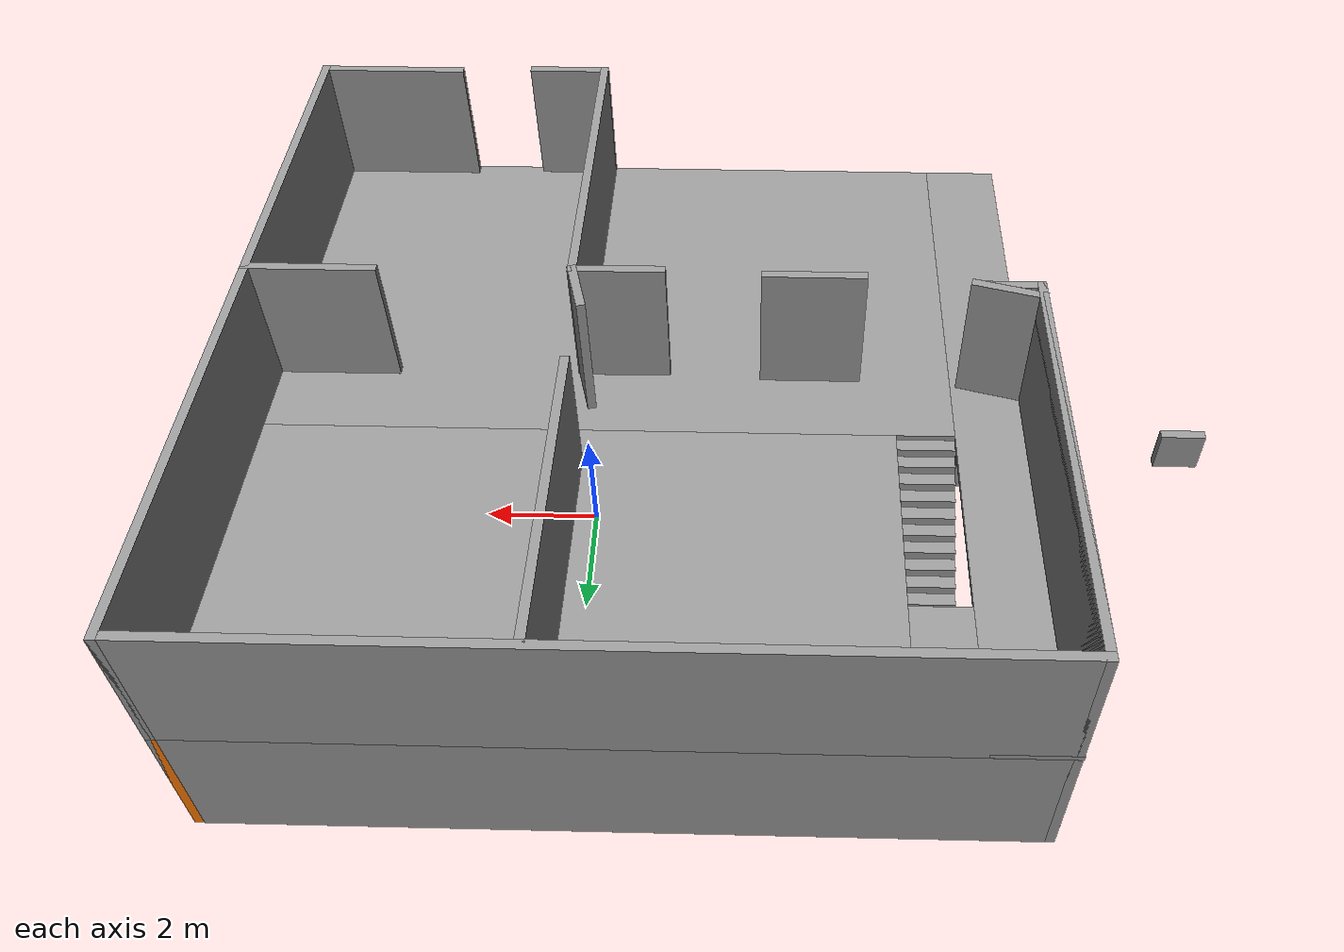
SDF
<?xml version='1.0'?>
<sdf version='1.6'>
  <model name='robothourse'>
    <pose frame=''>-0.9872 -0.461225 0 0 -0 0</pose>
    <link name='Door_0'>
      <collision name='Door_0_Collision'>
        <geometry>
          <box>
            <size>0.9 0.17 2</size>
          </box>
        </geometry>
        <pose frame=''>0 0 1 0 -0 0</pose>
      </collision>
      <visual name='Door_0_Visual'>
        <pose frame=''>0 0 1 0 -0 0</pose>
        <geometry>
          <box>
            <size>0.9 0.17 2</size>
          </box>
        </geometry>
        <material>
          <script>
            <uri>file://media/materials/scripts/gazebo.material</uri>
            <name>Gazebo/Grey</name>
          </script>
        </material>
      </visual>
      <pose frame=''>3.4481 -0.674475 0 0 -0 0</pose>
    </link>
    <link name='Floor_0'>
      <pose frame=''>-0.008428 0 2.5 0 -0 0</pose>
      <visual name='Floor_0_Visual_0'>
        <pose frame=''>-5.96465 0 0.05 0 -0 0</pose>
        <geometry>
          <box>
            <size>1.33756 13.3221 0.1</size>
          </box>
        </geometry>
        <material>
          <script>
            <uri>file://media/materials/scripts/gazebo.material</uri>
            <name>Gazebo/Grey</name>
          </script>
          <ambient>1 1 1 1</ambient>
        </material>
      </visual>
      <collision name='Floor_0_Collision_0'>
        <geometry>
          <box>
            <size>1.33756 13.3221 0.1</size>
          </box>
        </geometry>
        <pose frame=''>-5.96465 0 0.05 0 -0 0</pose>
      </collision>
      <visual name='Floor_0_Visual_1'>
        <pose frame=''>0.668778 -2.99544 0.05 0 -0 0</pose>
        <geometry>
          <box>
            <size>11.9293 7.33122 0.1</size>
          </box>
        </geometry>
        <material>
          <script>
            <uri>file://media/materials/scripts/gazebo.material</uri>
            <name>Gazebo/Grey</name>
          </script>
          <ambient>1 1 1 1</ambient>
        </material>
      </visual>
      <collision name='Floor_0_Collision_1'>
        <geometry>
          <box>
            <size>11.9293 7.33122 0.1</size>
          </box>
        </geometry>
        <pose frame=''>0.668778 -2.99544 0.05 0 -0 0</pose>
      </collision>
      <visual name='Floor_0_Visual_2'>
        <pose frame=''>1.16878 3.66561 0.05 0 -0 0</pose>
        <geometry>
          <box>
            <size>10.9293 5.99087 0.1</size>
          </box>
        </geometry>
        <material>
          <script>
            <uri>file://media/materials/scripts/gazebo.material</uri>
            <name>Gazebo/Grey</name>
          </script>
          <ambient>1 1 1 1</ambient>
        </material>
      </visual>
      <collision name='Floor_0_Collision_2'>
        <geometry>
          <box>
            <size>10.9293 5.99087 0.1</size>
          </box>
        </geometry>
        <pose frame=''>1.16878 3.66561 0.05 0 -0 0</pose>
      </collision>
      <visual name='Floor_0_Visual_3'>
        <pose frame=''>-4.79587 5.41561 0.05 0 -0 0</pose>
        <geometry>
          <box>
            <size>1 2.49087 0.1</size>
          </box>
        </geometry>
        <material>
          <script>
            <uri>file://media/materials/scripts/gazebo.material</uri>
            <name>Gazebo/Grey</name>
          </script>
          <ambient>1 1 1 1</ambient>
        </material>
      </visual>
      <collision name='Floor_0_Collision_3'>
        <geometry>
          <box>
            <size>1 2.49087 0.1</size>
          </box>
        </geometry>
        <pose frame=''>-4.79587 5.41561 0.05 0 -0 0</pose>
      </collision>
    </link>
    <link name='Stairs_0'>
      <visual name='Stairs_0_Visual_0'>
        <pose frame=''>-4.8043 4.05351 0.083333 0 -0 0</pose>
        <geometry>
          <box>
            <size>1 0.233333 0.166667</size>
          </box>
        </geometry>
        <material>
          <script>
            <uri>file://media/materials/scripts/gazebo.material</uri>
            <name>Gazebo/Grey</name>
          </script>
          <ambient>1 1 1 1</ambient>
        </material>
      </visual>
      <collision name='Stairs_0_Collision_0'>
        <geometry>
          <box>
            <size>1 0.233333 0.166667</size>
          </box>
        </geometry>
        <pose frame=''>-4.8043 4.05351 0.083333 0 -0 0</pose>
      </collision>
      <visual name='Stairs_0_Visual_1'>
        <pose frame=''>-4.8043 3.82017 0.25 0 -0 0</pose>
        <geometry>
          <box>
            <size>1 0.233333 0.166667</size>
          </box>
        </geometry>
        <material>
          <script>
            <uri>file://media/materials/scripts/gazebo.material</uri>
            <name>Gazebo/Grey</name>
          </script>
          <ambient>1 1 1 1</ambient>
        </material>
      </visual>
      <collision name='Stairs_0_Collision_1'>
        <geometry>
          <box>
            <size>1 0.233333 0.166667</size>
          </box>
        </geometry>
        <pose frame=''>-4.8043 3.82017 0.25 0 -0 0</pose>
      </collision>
      <visual name='Stairs_0_Visual_2'>
        <pose frame=''>-4.8043 3.58684 0.416667 0 -0 0</pose>
        <geometry>
          <box>
            <size>1 0.233333 0.166667</size>
          </box>
        </geometry>
        <material>
          <script>
            <uri>file://media/materials/scripts/gazebo.material</uri>
            <name>Gazebo/Grey</name>
          </script>
          <ambient>1 1 1 1</ambient>
        </material>
      </visual>
      <collision name='Stairs_0_Collision_2'>
        <geometry>
          <box>
            <size>1 0.233333 0.166667</size>
          </box>
        </geometry>
        <pose frame=''>-4.8043 3.58684 0.416667 0 -0 0</pose>
      </collision>
      <visual name='Stairs_0_Visual_3'>
        <pose frame=''>-4.8043 3.35351 0.583333 0 -0 0</pose>
        <geometry>
          <box>
            <size>1 0.233333 0.166667</size>
          </box>
        </geometry>
        <material>
          <script>
            <uri>file://media/materials/scripts/gazebo.material</uri>
            <name>Gazebo/Grey</name>
          </script>
          <ambient>1 1 1 1</ambient>
        </material>
      </visual>
      <collision name='Stairs_0_Collision_3'>
        <geometry>
          <box>
            <size>1 0.233333 0.166667</size>
          </box>
        </geometry>
        <pose frame=''>-4.8043 3.35351 0.583333 0 -0 0</pose>
      </collision>
      <visual name='Stairs_0_Visual_4'>
        <pose frame=''>-4.8043 3.12018 0.75 0 -0 0</pose>
        <geometry>
          <box>
            <size>1 0.233333 0.166667</size>
          </box>
        </geometry>
        <material>
          <script>
            <uri>file://media/materials/scripts/gazebo.material</uri>
            <name>Gazebo/Grey</name>
          </script>
          <ambient>1 1 1 1</ambient>
        </material>
      </visual>
      <collision name='Stairs_0_Collision_4'>
        <geometry>
          <box>
            <size>1 0.233333 0.166667</size>
          </box>
        </geometry>
        <pose frame=''>-4.8043 3.12018 0.75 0 -0 0</pose>
      </collision>
      <visual name='Stairs_0_Visual_5'>
        <pose frame=''>-4.8043 2.88684 0.916667 0 -0 0</pose>
        <geometry>
          <box>
            <size>1 0.233333 0.166667</size>
          </box>
        </geometry>
        <material>
          <script>
            <uri>file://media/materials/scripts/gazebo.material</uri>
            <name>Gazebo/Grey</name>
          </script>
          <ambient>1 1 1 1</ambient>
        </material>
      </visual>
      <collision name='Stairs_0_Collision_5'>
        <geometry>
          <box>
            <size>1 0.233333 0.166667</size>
          </box>
        </geometry>
        <pose frame=''>-4.8043 2.88684 0.916667 0 -0 0</pose>
      </collision>
      <visual name='Stairs_0_Visual_6'>
        <pose frame=''>-4.8043 2.65351 1.08333 0 -0 0</pose>
        <geometry>
          <box>
            <size>1 0.233333 0.166667</size>
          </box>
        </geometry>
        <material>
          <script>
            <uri>file://media/materials/scripts/gazebo.material</uri>
            <name>Gazebo/Grey</name>
          </script>
          <ambient>1 1 1 1</ambient>
        </material>
      </visual>
      <collision name='Stairs_0_Collision_6'>
        <geometry>
          <box>
            <size>1 0.233333 0.166667</size>
          </box>
        </geometry>
        <pose frame=''>-4.8043 2.65351 1.08333 0 -0 0</pose>
      </collision>
      <visual name='Stairs_0_Visual_7'>
        <pose frame=''>-4.8043 2.42017 1.25 0 -0 0</pose>
        <geometry>
          <box>
            <size>1 0.233333 0.166667</size>
          </box>
        </geometry>
        <material>
          <script>
            <uri>file://media/materials/scripts/gazebo.material</uri>
            <name>Gazebo/Grey</name>
          </script>
          <ambient>1 1 1 1</ambient>
        </material>
      </visual>
      <collision name='Stairs_0_Collision_7'>
        <geometry>
          <box>
            <size>1 0.233333 0.166667</size>
          </box>
        </geometry>
        <pose frame=''>-4.8043 2.42017 1.25 0 -0 0</pose>
      </collision>
      <visual name='Stairs_0_Visual_8'>
        <pose frame=''>-4.8043 2.18684 1.41667 0 -0 0</pose>
        <geometry>
          <box>
            <size>1 0.233333 0.166667</size>
          </box>
        </geometry>
        <material>
          <script>
            <uri>file://media/materials/scripts/gazebo.material</uri>
            <name>Gazebo/Grey</name>
          </script>
          <ambient>1 1 1 1</ambient>
        </material>
      </visual>
      <collision name='Stairs_0_Collision_8'>
        <geometry>
          <box>
            <size>1 0.233333 0.166667</size>
          </box>
        </geometry>
        <pose frame=''>-4.8043 2.18684 1.41667 0 -0 0</pose>
      </collision>
      <visual name='Stairs_0_Visual_9'>
        <pose frame=''>-4.8043 1.95351 1.58333 0 -0 0</pose>
        <geometry>
          <box>
            <size>1 0.233333 0.166667</size>
          </box>
        </geometry>
        <material>
          <script>
            <uri>file://media/materials/scripts/gazebo.material</uri>
            <name>Gazebo/Grey</name>
          </script>
          <ambient>1 1 1 1</ambient>
        </material>
      </visual>
      <collision name='Stairs_0_Collision_9'>
        <geometry>
          <box>
            <size>1 0.233333 0.166667</size>
          </box>
        </geometry>
        <pose frame=''>-4.8043 1.95351 1.58333 0 -0 0</pose>
      </collision>
      <visual name='Stairs_0_Visual_10'>
        <pose frame=''>-4.8043 1.72018 1.75 0 -0 0</pose>
        <geometry>
          <box>
            <size>1 0.233333 0.166667</size>
          </box>
        </geometry>
        <material>
          <script>
            <uri>file://media/materials/scripts/gazebo.material</uri>
            <name>Gazebo/Grey</name>
          </script>
          <ambient>1 1 1 1</ambient>
        </material>
      </visual>
      <collision name='Stairs_0_Collision_10'>
        <geometry>
          <box>
            <size>1 0.233333 0.166667</size>
          </box>
        </geometry>
        <pose frame=''>-4.8043 1.72018 1.75 0 -0 0</pose>
      </collision>
      <visual name='Stairs_0_Visual_11'>
        <pose frame=''>-4.8043 1.48684 1.91667 0 -0 0</pose>
        <geometry>
          <box>
            <size>1 0.233333 0.166667</size>
          </box>
        </geometry>
        <material>
          <script>
            <uri>file://media/materials/scripts/gazebo.material</uri>
            <name>Gazebo/Grey</name>
          </script>
          <ambient>1 1 1 1</ambient>
        </material>
      </visual>
      <collision name='Stairs_0_Collision_11'>
        <geometry>
          <box>
            <size>1 0.233333 0.166667</size>
          </box>
        </geometry>
        <pose frame=''>-4.8043 1.48684 1.91667 0 -0 0</pose>
      </collision>
      <visual name='Stairs_0_Visual_12'>
        <pose frame=''>-4.8043 1.25351 2.08333 0 -0 0</pose>
        <geometry>
          <box>
            <size>1 0.233333 0.166667</size>
          </box>
        </geometry>
        <material>
          <script>
            <uri>file://media/materials/scripts/gazebo.material</uri>
            <name>Gazebo/Grey</name>
          </script>
          <ambient>1 1 1 1</ambient>
        </material>
      </visual>
      <collision name='Stairs_0_Collision_12'>
        <geometry>
          <box>
            <size>1 0.233333 0.166667</size>
          </box>
        </geometry>
        <pose frame=''>-4.8043 1.25351 2.08333 0 -0 0</pose>
      </collision>
      <visual name='Stairs_0_Visual_13'>
        <pose frame=''>-4.8043 1.02018 2.25 0 -0 0</pose>
        <geometry>
          <box>
            <size>1 0.233333 0.166667</size>
          </box>
        </geometry>
        <material>
          <script>
            <uri>file://media/materials/scripts/gazebo.material</uri>
            <name>Gazebo/Grey</name>
          </script>
          <ambient>1 1 1 1</ambient>
        </material>
      </visual>
      <collision name='Stairs_0_Collision_13'>
        <geometry>
          <box>
            <size>1 0.233333 0.166667</size>
          </box>
        </geometry>
        <pose frame=''>-4.8043 1.02018 2.25 0 -0 0</pose>
      </collision>
      <visual name='Stairs_0_Visual_14'>
        <pose frame=''>-4.8043 0.786842 2.41667 0 -0 0</pose>
        <geometry>
          <box>
            <size>1 0.233333 0.166667</size>
          </box>
        </geometry>
        <material>
          <script>
            <uri>file://media/materials/scripts/gazebo.material</uri>
            <name>Gazebo/Grey</name>
          </script>
          <ambient>1 1 1 1</ambient>
        </material>
      </visual>
      <collision name='Stairs_0_Collision_14'>
        <geometry>
          <box>
            <size>1 0.233333 0.166667</size>
          </box>
        </geometry>
        <pose frame=''>-4.8043 0.786842 2.41667 0 -0 0</pose>
      </collision>
    </link>
    <link name='Wall_10'>
      <collision name='Wall_10_Collision'>
        <geometry>
          <box>
            <size>6 0.15 2.5</size>
          </box>
        </geometry>
        <pose frame=''>0 0 1.25 0 -0 0</pose>
      </collision>
      <visual name='Wall_10_Visual'>
        <pose frame=''>0 0 1.25 0 -0 0</pose>
        <geometry>
          <box>
            <size>6 0.15 2.5</size>
          </box>
        </geometry>
        <material>
          <script>
            <uri>file://media/materials/scripts/gazebo.material</uri>
            <name>Gazebo/Grey</name>
          </script>
          <ambient>1 1 1 1</ambient>
        </material>
      </visual>
      <pose frame=''>1.1459 -3.66105 0 0 -0 1.5708</pose>
    </link>
    <link name='Wall_11'>
      <collision name='Wall_11_Collision'>
        <geometry>
          <box>
            <size>1 0.15 2.5</size>
          </box>
        </geometry>
        <pose frame=''>0 0 1.25 0 -0 0</pose>
      </collision>
      <visual name='Wall_11_Visual'>
        <pose frame=''>0 0 1.25 0 -0 0</pose>
        <geometry>
          <box>
            <size>1 0.15 2.5</size>
          </box>
        </geometry>
        <material>
          <script>
            <uri>file://media/materials/scripts/gazebo.material</uri>
            <name>Gazebo/Grey</name>
          </script>
          <ambient>1 1 1 1</ambient>
        </material>
      </visual>
      <pose frame=''>1.0359 -0.325532 0 0 -0 1.8326</pose>
    </link>
    <link name='Wall_13'>
      <collision name='Wall_13_Collision'>
        <geometry>
          <box>
            <size>5.25 0.15 2.5</size>
          </box>
        </geometry>
        <pose frame=''>0 0 1.25 0 -0 0</pose>
      </collision>
      <visual name='Wall_13_Visual'>
        <pose frame=''>0 0 1.25 0 -0 0</pose>
        <geometry>
          <box>
            <size>5.25 0.15 2.5</size>
          </box>
        </geometry>
        <material>
          <script>
            <uri>file://media/materials/scripts/gazebo.material</uri>
            <name>Gazebo/Grey</name>
          </script>
          <ambient>1 1 1 1</ambient>
        </material>
      </visual>
      <pose frame=''>1.02792 3.93863 0 0 -0 1.5708</pose>
    </link>
    <link name='Wall_15'>
      <collision name='Wall_15_Collision'>
        <geometry>
          <box>
            <size>7.25 0.15 2.5</size>
          </box>
        </geometry>
        <pose frame=''>0 0 1.25 0 -0 0</pose>
      </collision>
      <visual name='Wall_15_Visual'>
        <pose frame=''>0 0 1.25 0 -0 0</pose>
        <geometry>
          <box>
            <size>7.25 0.15 2.5</size>
          </box>
        </geometry>
        <material>
          <script>
            <uri>file://media/materials/scripts/gazebo.material</uri>
            <name>Gazebo/Grey</name>
          </script>
          <ambient>1 1 1 1</ambient>
        </material>
      </visual>
      <pose frame=''>-6.55 3.03605 0 0 0 -1.5708</pose>
    </link>
    <link name='Wall_16'>
      <collision name='Wall_16_Collision'>
        <geometry>
          <box>
            <size>1 0.15 2.5</size>
          </box>
        </geometry>
        <pose frame=''>0 0 1.25 0 -0 0</pose>
      </collision>
      <visual name='Wall_16_Visual'>
        <pose frame=''>0 0 1.25 0 -0 0</pose>
        <geometry>
          <box>
            <size>1 0.15 2.5</size>
          </box>
        </geometry>
        <material>
          <script>
            <uri>file://media/materials/scripts/gazebo.material</uri>
            <name>Gazebo/Grey</name>
          </script>
          <ambient>1 1 1 1</ambient>
        </material>
      </visual>
      <pose frame=''>-6.125 -0.51395 0 0 -0 0</pose>
    </link>
    <link name='Wall_18'>
      <collision name='Wall_18_Collision'>
        <geometry>
          <box>
            <size>1.75 0.15 2.5</size>
          </box>
        </geometry>
        <pose frame=''>0 0 1.25 0 -0 0</pose>
      </collision>
      <visual name='Wall_18_Visual'>
        <pose frame=''>0 0 1.25 0 -0 0</pose>
        <geometry>
          <box>
            <size>1.75 0.15 2.5</size>
          </box>
        </geometry>
        <material>
          <script>
            <uri>file://media/materials/scripts/gazebo.material</uri>
            <name>Gazebo/Grey</name>
          </script>
          <ambient>1 1 1 1</ambient>
        </material>
      </visual>
      <pose frame=''>-2.85372 -0.674475 0 0 -0 0</pose>
    </link>
    <link name='Wall_2'>
      <collision name='Wall_2_Collision'>
        <geometry>
          <box>
            <size>13.25 0.15 2.5</size>
          </box>
        </geometry>
        <pose frame=''>0 0 1.25 0 -0 0</pose>
      </collision>
      <visual name='Wall_2_Visual'>
        <pose frame=''>0 0 1.25 0 -0 0</pose>
        <geometry>
          <box>
            <size>13.25 0.15 2.5</size>
          </box>
        </geometry>
        <material>
          <script>
            <uri>file://media/materials/scripts/gazebo.material</uri>
            <name>Gazebo/Grey</name>
          </script>
          <ambient>1 1 1 1</ambient>
        </material>
      </visual>
      <pose frame=''>0 6.58605 0 0 -0 0</pose>
    </link>
    <link name='Wall_20'>
      <collision name='Wall_20_Collision'>
        <geometry>
          <box>
            <size>1.61703 0.15 2.5</size>
          </box>
        </geometry>
        <pose frame=''>0 0 1.25 0 -0 0</pose>
      </collision>
      <visual name='Wall_20_Visual'>
        <pose frame=''>0 0 1.25 0 -0 0</pose>
        <geometry>
          <box>
            <size>1.61703 0.15 2.5</size>
          </box>
        </geometry>
        <material>
          <script>
            <uri>file://media/materials/scripts/gazebo.material</uri>
            <name>Gazebo/Grey</name>
          </script>
          <ambient>1 1 1 1</ambient>
        </material>
      </visual>
      <pose frame=''>0.412437 -0.744938 0 0 -0 0.012117</pose>
    </link>
    <link name='Wall_22'>
      <collision name='Wall_22_Collision'>
        <geometry>
          <box>
            <size>13.25 0.15 2.5</size>
          </box>
        </geometry>
        <pose frame=''>0 0 1.25 0 -0 0</pose>
      </collision>
      <visual name='Wall_22_Visual'>
        <pose frame=''>0 0 1.25 0 -0 0</pose>
        <geometry>
          <box>
            <size>13.25 0.15 2.5</size>
          </box>
        </geometry>
        <material>
          <script>
            <uri>file://media/materials/scripts/gazebo.material</uri>
            <name>Gazebo/Grey</name>
          </script>
          <ambient>1 1 1 1</ambient>
        </material>
      </visual>
      <pose frame=''>0 6.58605 2.5 0 -0 0</pose>
    </link>
    <link name='Wall_23'>
      <collision name='Wall_23_Collision'>
        <geometry>
          <box>
            <size>13.25 0.15 2.5</size>
          </box>
        </geometry>
        <pose frame=''>0 0 1.25 0 -0 0</pose>
      </collision>
      <visual name='Wall_23_Visual'>
        <pose frame=''>0 0 1.25 0 -0 0</pose>
        <geometry>
          <box>
            <size>13.25 0.15 2.5</size>
          </box>
        </geometry>
        <material>
          <script>
            <uri>file://media/materials/scripts/gazebo.material</uri>
            <name>Gazebo/Grey</name>
          </script>
          <ambient>1 1 1 1</ambient>
        </material>
      </visual>
      <pose frame=''>6.55 0.03605 2.5 0 0 -1.5708</pose>
    </link>
    <link name='Wall_24'>
      <collision name='Wall_24_Collision'>
        <geometry>
          <box>
            <size>2.75 0.15 2.5</size>
          </box>
        </geometry>
        <pose frame=''>0 0 1.25 0 -0 0</pose>
      </collision>
      <visual name='Wall_24_Visual'>
        <pose frame=''>0 0 1.25 0 -0 0</pose>
        <geometry>
          <box>
            <size>2.75 0.15 2.5</size>
          </box>
        </geometry>
        <material>
          <script>
            <uri>file://media/materials/scripts/gazebo.material</uri>
            <name>Gazebo/Grey</name>
          </script>
          <ambient>1 1 1 1</ambient>
        </material>
      </visual>
      <pose frame=''>5.25 -6.51395 2.5 0 -0 3.14159</pose>
    </link>
    <link name='Wall_25'>
      <collision name='Wall_25_Collision'>
        <geometry>
          <box>
            <size>2.25 0.15 2.5</size>
          </box>
        </geometry>
        <pose frame=''>0 0 1.25 0 -0 0</pose>
      </collision>
      <visual name='Wall_25_Visual'>
        <pose frame=''>0 0 1.25 0 -0 0</pose>
        <geometry>
          <box>
            <size>2.25 0.15 2.5</size>
          </box>
        </geometry>
        <material>
          <script>
            <uri>file://media/materials/scripts/gazebo.material</uri>
            <name>Gazebo/Grey</name>
          </script>
          <ambient>1 1 1 1</ambient>
        </material>
      </visual>
      <pose frame=''>5.49275 -0.674475 2.5 0 -0 3.14159</pose>
    </link>
    <link name='Wall_26'>
      <collision name='Wall_26_Collision'>
        <geometry>
          <box>
            <size>1.5 0.15 2.5</size>
          </box>
        </geometry>
        <pose frame=''>0 0 1.25 0 -0 0</pose>
      </collision>
      <visual name='Wall_26_Visual'>
        <pose frame=''>0 0 1.25 0 -0 0</pose>
        <geometry>
          <box>
            <size>1.5 0.15 2.5</size>
          </box>
        </geometry>
        <material>
          <script>
            <uri>file://media/materials/scripts/gazebo.material</uri>
            <name>Gazebo/Grey</name>
          </script>
          <ambient>1 1 1 1</ambient>
        </material>
      </visual>
      <pose frame=''>1.8209 -6.58605 2.5 0 -0 3.14159</pose>
    </link>
    <link name='Wall_27'>
      <collision name='Wall_27_Collision'>
        <geometry>
          <box>
            <size>6 0.15 2.5</size>
          </box>
        </geometry>
        <pose frame=''>0 0 1.25 0 -0 0</pose>
      </collision>
      <visual name='Wall_27_Visual'>
        <pose frame=''>0 0 1.25 0 -0 0</pose>
        <geometry>
          <box>
            <size>6 0.15 2.5</size>
          </box>
        </geometry>
        <material>
          <script>
            <uri>file://media/materials/scripts/gazebo.material</uri>
            <name>Gazebo/Grey</name>
          </script>
          <ambient>1 1 1 1</ambient>
        </material>
      </visual>
      <pose frame=''>1.1459 -3.66105 2.5 0 -0 1.5708</pose>
    </link>
    <link name='Wall_28'>
      <collision name='Wall_28_Collision'>
        <geometry>
          <box>
            <size>1 0.15 2.5</size>
          </box>
        </geometry>
        <pose frame=''>0 0 1.25 0 -0 0</pose>
      </collision>
      <visual name='Wall_28_Visual'>
        <pose frame=''>0 0 1.25 0 -0 0</pose>
        <geometry>
          <box>
            <size>1 0.15 2.5</size>
          </box>
        </geometry>
        <material>
          <script>
            <uri>file://media/materials/scripts/gazebo.material</uri>
            <name>Gazebo/Grey</name>
          </script>
          <ambient>1 1 1 1</ambient>
        </material>
      </visual>
      <pose frame=''>1.0359 -0.325532 2.5 0 -0 1.8326</pose>
    </link>
    <link name='Wall_29'>
      <collision name='Wall_29_Collision'>
        <geometry>
          <box>
            <size>5.25 0.15 2.5</size>
          </box>
        </geometry>
        <pose frame=''>0 0 1.25 0 -0 0</pose>
      </collision>
      <visual name='Wall_29_Visual'>
        <pose frame=''>0 0 1.25 0 -0 0</pose>
        <geometry>
          <box>
            <size>5.25 0.15 2.5</size>
          </box>
        </geometry>
        <material>
          <script>
            <uri>file://media/materials/scripts/gazebo.material</uri>
            <name>Gazebo/Grey</name>
          </script>
          <ambient>1 1 1 1</ambient>
        </material>
      </visual>
      <pose frame=''>1.02792 3.93863 2.5 0 -0 1.5708</pose>
    </link>
    <link name='Wall_3'>
      <collision name='Wall_3_Collision'>
        <geometry>
          <box>
            <size>13.25 0.15 2.5</size>
          </box>
        </geometry>
        <pose frame=''>0 0 1.25 0 -0 0</pose>
      </collision>
      <visual name='Wall_3_Visual'>
        <pose frame=''>0 0 1.25 0 -0 0</pose>
        <geometry>
          <box>
            <size>13.25 0.15 2.5</size>
          </box>
        </geometry>
        <material>
          <script>
            <uri>file://media/materials/scripts/gazebo.material</uri>
            <name>Gazebo/Grey</name>
          </script>
          <ambient>0.996078 0.47451 0.0196078 1</ambient>
        </material>
      </visual>
      <pose frame=''>6.55 0.03605 0 0 0 -1.5708</pose>
    </link>
    <link name='Wall_30'>
      <collision name='Wall_30_Collision'>
        <geometry>
          <box>
            <size>7.25 0.15 2.5</size>
          </box>
        </geometry>
        <pose frame=''>0 0 1.25 0 -0 0</pose>
      </collision>
      <visual name='Wall_30_Visual'>
        <pose frame=''>0 0 1.25 0 -0 0</pose>
        <geometry>
          <box>
            <size>7.25 0.15 2.5</size>
          </box>
        </geometry>
        <material>
          <script>
            <uri>file://media/materials/scripts/gazebo.material</uri>
            <name>Gazebo/Grey</name>
          </script>
          <ambient>1 1 1 1</ambient>
        </material>
      </visual>
      <pose frame=''>-6.55 3.03605 2.5 0 0 -1.5708</pose>
    </link>
    <link name='Wall_31'>
      <collision name='Wall_31_Collision'>
        <geometry>
          <box>
            <size>1 0.15 2.5</size>
          </box>
        </geometry>
        <pose frame=''>0 0 1.25 0 -0 0</pose>
      </collision>
      <visual name='Wall_31_Visual'>
        <pose frame=''>0 0 1.25 0 -0 0</pose>
        <geometry>
          <box>
            <size>1 0.15 2.5</size>
          </box>
        </geometry>
        <material>
          <script>
            <uri>file://media/materials/scripts/gazebo.material</uri>
            <name>Gazebo/Grey</name>
          </script>
          <ambient>1 1 1 1</ambient>
        </material>
      </visual>
      <pose frame=''>-6.125 -0.51395 2.5 0 -0 0</pose>
    </link>
    <link name='Wall_32'>
      <collision name='Wall_32_Collision'>
        <geometry>
          <box>
            <size>1.75 0.15 2.5</size>
          </box>
        </geometry>
        <pose frame=''>0 0 1.25 0 -0 0</pose>
      </collision>
      <visual name='Wall_32_Visual'>
        <pose frame=''>0 0 1.25 0 -0 0</pose>
        <geometry>
          <box>
            <size>1.75 0.15 2.5</size>
          </box>
        </geometry>
        <material>
          <script>
            <uri>file://media/materials/scripts/gazebo.material</uri>
            <name>Gazebo/Grey</name>
          </script>
          <ambient>1 1 1 1</ambient>
        </material>
      </visual>
      <pose frame=''>-2.85372 -0.674475 2.5 0 -0 0</pose>
    </link>
    <link name='Wall_33'>
      <collision name='Wall_33_Collision'>
        <geometry>
          <box>
            <size>1.61703 0.15 2.5</size>
          </box>
        </geometry>
        <pose frame=''>0 0 1.25 0 -0 0</pose>
      </collision>
      <visual name='Wall_33_Visual'>
        <pose frame=''>0 0 1.25 0 -0 0</pose>
        <geometry>
          <box>
            <size>1.61703 0.15 2.5</size>
          </box>
        </geometry>
        <material>
          <script>
            <uri>file://media/materials/scripts/gazebo.material</uri>
            <name>Gazebo/Grey</name>
          </script>
          <ambient>1 1 1 1</ambient>
        </material>
      </visual>
      <pose frame=''>0.412437 -0.744938 2.5 0 -0 0.012117</pose>
    </link>
    <link name='Wall_34'>
      <collision name='Wall_34_Collision'>
        <geometry>
          <box>
            <size>7 0.15 2.5</size>
          </box>
        </geometry>
        <pose frame=''>0 0 1.25 0 -0 0</pose>
      </collision>
      <visual name='Wall_34_Visual'>
        <pose frame=''>0 0 1.25 0 -0 0</pose>
        <geometry>
          <box>
            <size>7 0.15 2.5</size>
          </box>
        </geometry>
        <material>
          <script>
            <uri>file://media/materials/scripts/gazebo.material</uri>
            <name>Gazebo/Grey</name>
          </script>
          <ambient>1 1 1 1</ambient>
        </material>
      </visual>
      <pose frame=''>-6.55 3.16105 2.5 0 0 -1.5708</pose>
    </link>
    <link name='Wall_35'>
      <collision name='Wall_35_Collision'>
        <geometry>
          <box>
            <size>1.25 0.15 2.5</size>
          </box>
        </geometry>
        <pose frame=''>0 0 1.25 0 -0 0</pose>
      </collision>
      <visual name='Wall_35_Visual'>
        <pose frame=''>0 0 1.25 0 -0 0</pose>
        <geometry>
          <box>
            <size>1.25 0.15 2.5</size>
          </box>
        </geometry>
        <material>
          <script>
            <uri>file://media/materials/scripts/gazebo.material</uri>
            <name>Gazebo/Grey</name>
          </script>
          <ambient>1 1 1 1</ambient>
        </material>
      </visual>
      <pose frame=''>-6.01874 -0.406301 2.5 0 0 -0.261799</pose>
    </link>
    <link name='Wall_37'>
      <collision name='Wall_37_Collision'>
        <geometry>
          <box>
            <size>13.25 0.15 2.5</size>
          </box>
        </geometry>
        <pose frame=''>0 0 1.25 0 -0 0</pose>
      </collision>
      <visual name='Wall_37_Visual'>
        <pose frame=''>0 0 1.25 0 -0 0</pose>
        <geometry>
          <box>
            <size>13.25 0.15 2.5</size>
          </box>
        </geometry>
        <material>
          <script>
            <uri>file://media/materials/scripts/gazebo.material</uri>
            <name>Gazebo/Grey</name>
          </script>
          <ambient>1 1 1 1</ambient>
        </material>
      </visual>
      <pose frame=''>0 6.58605 2.5 0 -0 0</pose>
    </link>
    <link name='Wall_38'>
      <collision name='Wall_38_Collision'>
        <geometry>
          <box>
            <size>13.25 0.15 2.5</size>
          </box>
        </geometry>
        <pose frame=''>0 0 1.25 0 -0 0</pose>
      </collision>
      <visual name='Wall_38_Visual'>
        <pose frame=''>0 0 1.25 0 -0 0</pose>
        <geometry>
          <box>
            <size>13.25 0.15 2.5</size>
          </box>
        </geometry>
        <material>
          <script>
            <uri>file://media/materials/scripts/gazebo.material</uri>
            <name>Gazebo/Grey</name>
          </script>
          <ambient>1 1 1 1</ambient>
        </material>
      </visual>
      <pose frame=''>6.55 0.03605 2.5 0 0 -1.5708</pose>
    </link>
    <link name='Wall_4'>
      <collision name='Wall_4_Collision'>
        <geometry>
          <box>
            <size>2.75 0.15 2.5</size>
          </box>
        </geometry>
        <pose frame=''>0 0 1.25 0 -0 0</pose>
      </collision>
      <visual name='Wall_4_Visual'>
        <pose frame=''>0 0 1.25 0 -0 0</pose>
        <geometry>
          <box>
            <size>2.75 0.15 2.5</size>
          </box>
        </geometry>
        <material>
          <script>
            <uri>file://media/materials/scripts/gazebo.material</uri>
            <name>Gazebo/Bricks</name>
          </script>
          <ambient>1 1 1 1</ambient>
        </material>
      </visual>
      <pose frame=''>5.25 -6.51395 0 0 -0 3.14159</pose>
    </link>
    <link name='Wall_6'>
      <collision name='Wall_6_Collision'>
        <geometry>
          <box>
            <size>2.25 0.15 2.5</size>
          </box>
        </geometry>
        <pose frame=''>0 0 1.25 0 -0 0</pose>
      </collision>
      <visual name='Wall_6_Visual'>
        <pose frame=''>0 0 1.25 0 -0 0</pose>
        <geometry>
          <box>
            <size>2.25 0.15 2.5</size>
          </box>
        </geometry>
        <material>
          <script>
            <uri>file://media/materials/scripts/gazebo.material</uri>
            <name>Gazebo/Grey</name>
          </script>
          <ambient>1 1 1 1</ambient>
        </material>
      </visual>
      <pose frame=''>5.49275 -0.674475 0 0 -0 3.14159</pose>
    </link>
    <link name='Wall_9'>
      <collision name='Wall_9_Collision'>
        <geometry>
          <box>
            <size>1.5 0.15 2.5</size>
          </box>
        </geometry>
        <pose frame=''>0 0 1.25 0 -0 0</pose>
      </collision>
      <visual name='Wall_9_Visual'>
        <pose frame=''>0 0 1.25 0 -0 0</pose>
        <geometry>
          <box>
            <size>1.5 0.15 2.5</size>
          </box>
        </geometry>
        <material>
          <script>
            <uri>file://media/materials/scripts/gazebo.material</uri>
            <name>Gazebo/Grey</name>
          </script>
          <ambient>1 1 1 1</ambient>
        </material>
      </visual>
      <pose frame=''>1.8209 -6.58605 0 0 -0 3.14159</pose>
    </link>
    <link name='Window_0'>
      <collision name='Window_0_Collision'>
        <geometry>
          <box>
            <size>0.8 0.17 0.8</size>
          </box>
        </geometry>
        <pose frame=''>0 0 0.4 0 -0 0</pose>
      </collision>
      <visual name='Window_0_Visual'>
        <pose frame=''>0 0 0.4 0 -0 0</pose>
        <geometry>
          <box>
            <size>0.8 0.17 0.8</size>
          </box>
        </geometry>
        <material>
          <script>
            <uri>file://media/materials/scripts/gazebo.material</uri>
            <name>Gazebo/Grey</name>
          </script>
        </material>
      </visual>
      <pose frame=''>-9.7108 -0.674775 0.5 0 -0 0</pose>
    </link>
    <link name='Window_1'>
      <collision name='Window_1_Collision'>
        <geometry>
          <box>
            <size>0.8 0.17 0.8</size>
          </box>
        </geometry>
        <pose frame=''>0 0 0.4 0 -0 0</pose>
      </collision>
      <visual name='Window_1_Visual'>
        <pose frame=''>0 0 0.4 0 -0 0</pose>
        <geometry>
          <box>
            <size>0.8 0.17 0.8</size>
          </box>
        </geometry>
        <material>
          <script>
            <uri>file://media/materials/scripts/gazebo.material</uri>
            <name>Gazebo/Grey</name>
          </script>
        </material>
      </visual>
      <pose frame=''>3.24973 -6.62573 0.5 0 -0 0</pose>
    </link>
    <static>1</static>
  </model>
</sdf>
